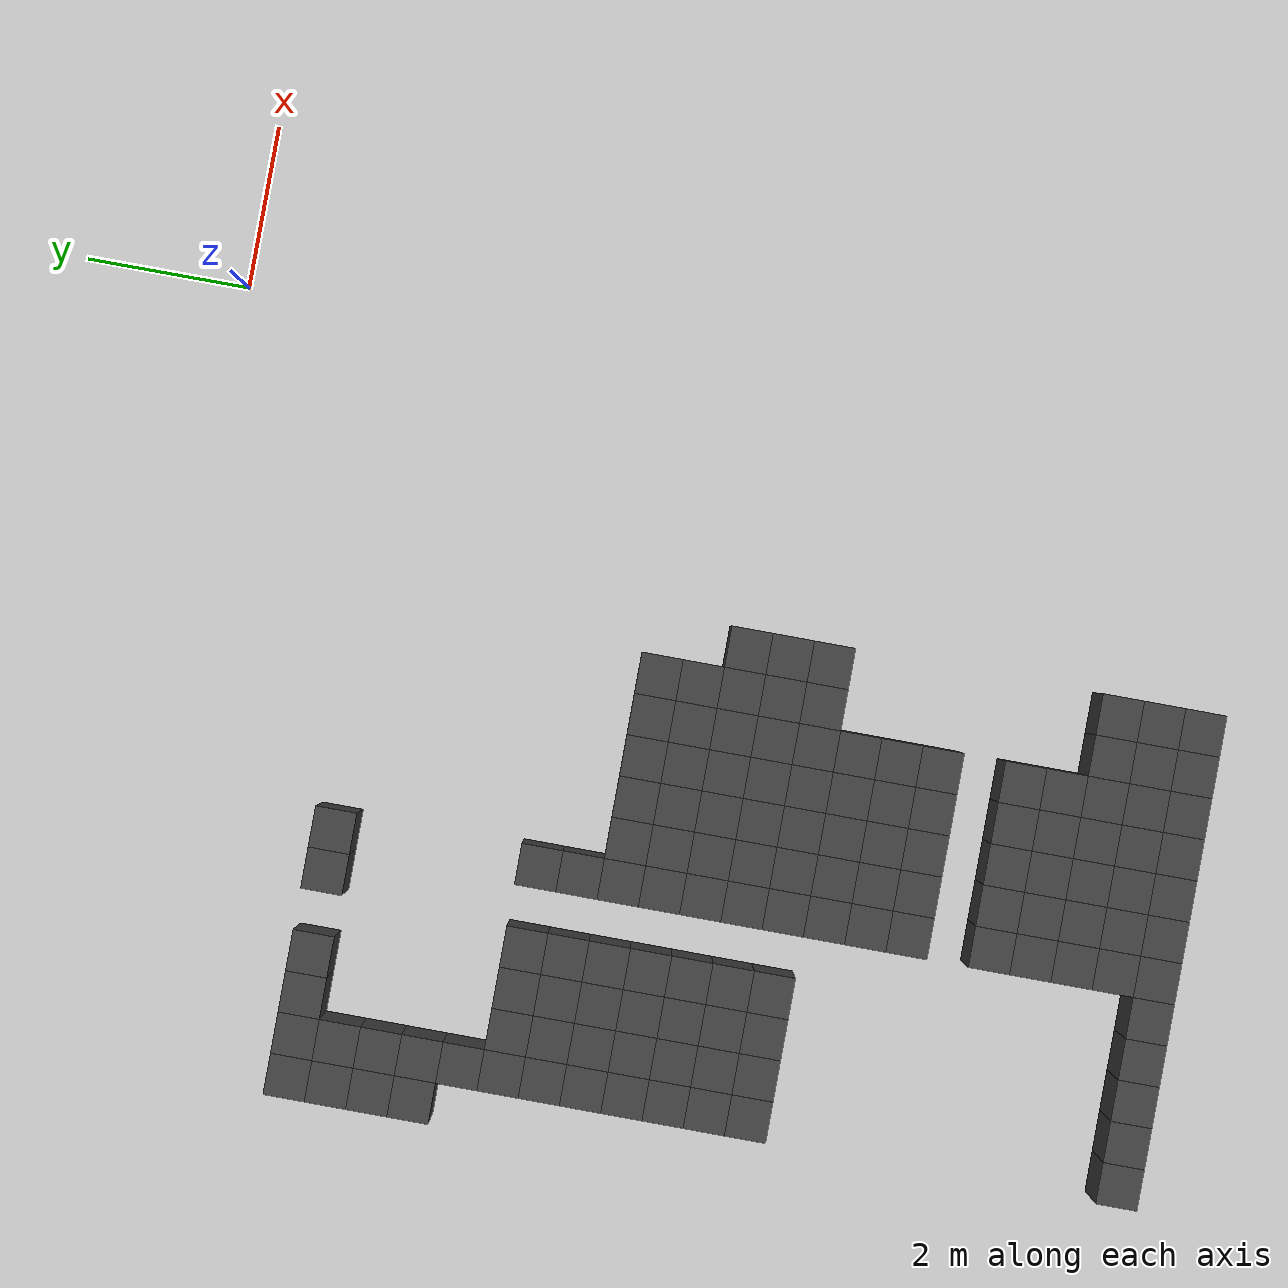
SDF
<sdf version="1.7">
 <world name="map_14494">
  <model name="ground_plane">
   <static>true</static>
   <link name="link">
    <collision name="collision">
     <geometry><plane><normal>0 0 1</normal><size>200 200</size></plane></geometry>
    </collision>
    <visual name="visual">
     <geometry><plane><normal>0 0 1</normal><size>200 200</size></plane></geometry>
     <material><ambient>0.8 0.8 0.8 1</ambient><diffuse>0.8 0.8 0.8 1</diffuse></material>
    </visual>
   </link>
  </model>
  <model name="maze_environment">
   <static>true</static>
   <link name="wall_1055">
    <pose>-9.250 -2.250 0.500 0 0 0</pose>
    <collision name="col"><geometry><box><size>0.5 0.5 1.0</size></box></geometry></collision>
    <visual name="vis">
     <geometry><box><size>0.5 0.5 1.0</size></box></geometry>
     <material><ambient>0.15 0.15 0.15 1</ambient><diffuse>0.25 0.25 0.25 1</diffuse></material>
    </visual>
   </link>
   <link name="wall_1056">
    <pose>-8.750 -2.250 0.500 0 0 0</pose>
    <collision name="col"><geometry><box><size>0.5 0.5 1.0</size></box></geometry></collision>
    <visual name="vis">
     <geometry><box><size>0.5 0.5 1.0</size></box></geometry>
     <material><ambient>0.15 0.15 0.15 1</ambient><diffuse>0.25 0.25 0.25 1</diffuse></material>
    </visual>
   </link>
   <link name="wall_1057">
    <pose>-8.250 -2.250 0.500 0 0 0</pose>
    <collision name="col"><geometry><box><size>0.5 0.5 1.0</size></box></geometry></collision>
    <visual name="vis">
     <geometry><box><size>0.5 0.5 1.0</size></box></geometry>
     <material><ambient>0.15 0.15 0.15 1</ambient><diffuse>0.25 0.25 0.25 1</diffuse></material>
    </visual>
   </link>
   <link name="wall_1058">
    <pose>-7.750 -2.250 0.500 0 0 0</pose>
    <collision name="col"><geometry><box><size>0.5 0.5 1.0</size></box></geometry></collision>
    <visual name="vis">
     <geometry><box><size>0.5 0.5 1.0</size></box></geometry>
     <material><ambient>0.15 0.15 0.15 1</ambient><diffuse>0.25 0.25 0.25 1</diffuse></material>
    </visual>
   </link>
   <link name="wall_1059">
    <pose>-6.750 -2.250 0.500 0 0 0</pose>
    <collision name="col"><geometry><box><size>0.5 0.5 1.0</size></box></geometry></collision>
    <visual name="vis">
     <geometry><box><size>0.5 0.5 1.0</size></box></geometry>
     <material><ambient>0.15 0.15 0.15 1</ambient><diffuse>0.25 0.25 0.25 1</diffuse></material>
    </visual>
   </link>
   <link name="wall_1060">
    <pose>-6.250 -2.250 0.500 0 0 0</pose>
    <collision name="col"><geometry><box><size>0.5 0.5 1.0</size></box></geometry></collision>
    <visual name="vis">
     <geometry><box><size>0.5 0.5 1.0</size></box></geometry>
     <material><ambient>0.15 0.15 0.15 1</ambient><diffuse>0.25 0.25 0.25 1</diffuse></material>
    </visual>
   </link>
   <link name="wall_1087">
    <pose>-9.250 -2.750 0.500 0 0 0</pose>
    <collision name="col"><geometry><box><size>0.5 0.5 1.0</size></box></geometry></collision>
    <visual name="vis">
     <geometry><box><size>0.5 0.5 1.0</size></box></geometry>
     <material><ambient>0.15 0.15 0.15 1</ambient><diffuse>0.25 0.25 0.25 1</diffuse></material>
    </visual>
   </link>
   <link name="wall_1088">
    <pose>-8.750 -2.750 0.500 0 0 0</pose>
    <collision name="col"><geometry><box><size>0.5 0.5 1.0</size></box></geometry></collision>
    <visual name="vis">
     <geometry><box><size>0.5 0.5 1.0</size></box></geometry>
     <material><ambient>0.15 0.15 0.15 1</ambient><diffuse>0.25 0.25 0.25 1</diffuse></material>
    </visual>
   </link>
   <link name="wall_1113">
    <pose>-9.250 -3.250 0.500 0 0 0</pose>
    <collision name="col"><geometry><box><size>0.5 0.5 1.0</size></box></geometry></collision>
    <visual name="vis">
     <geometry><box><size>0.5 0.5 1.0</size></box></geometry>
     <material><ambient>0.15 0.15 0.15 1</ambient><diffuse>0.25 0.25 0.25 1</diffuse></material>
    </visual>
   </link>
   <link name="wall_1114">
    <pose>-8.750 -3.250 0.500 0 0 0</pose>
    <collision name="col"><geometry><box><size>0.5 0.5 1.0</size></box></geometry></collision>
    <visual name="vis">
     <geometry><box><size>0.5 0.5 1.0</size></box></geometry>
     <material><ambient>0.15 0.15 0.15 1</ambient><diffuse>0.25 0.25 0.25 1</diffuse></material>
    </visual>
   </link>
   <link name="wall_1140">
    <pose>-9.250 -3.750 0.500 0 0 0</pose>
    <collision name="col"><geometry><box><size>0.5 0.5 1.0</size></box></geometry></collision>
    <visual name="vis">
     <geometry><box><size>0.5 0.5 1.0</size></box></geometry>
     <material><ambient>0.15 0.15 0.15 1</ambient><diffuse>0.25 0.25 0.25 1</diffuse></material>
    </visual>
   </link>
   <link name="wall_1141">
    <pose>-8.750 -3.750 0.500 0 0 0</pose>
    <collision name="col"><geometry><box><size>0.5 0.5 1.0</size></box></geometry></collision>
    <visual name="vis">
     <geometry><box><size>0.5 0.5 1.0</size></box></geometry>
     <material><ambient>0.15 0.15 0.15 1</ambient><diffuse>0.25 0.25 0.25 1</diffuse></material>
    </visual>
   </link>
   <link name="wall_1168">
    <pose>-8.750 -4.250 0.500 0 0 0</pose>
    <collision name="col"><geometry><box><size>0.5 0.5 1.0</size></box></geometry></collision>
    <visual name="vis">
     <geometry><box><size>0.5 0.5 1.0</size></box></geometry>
     <material><ambient>0.15 0.15 0.15 1</ambient><diffuse>0.25 0.25 0.25 1</diffuse></material>
    </visual>
   </link>
   <link name="wall_1195">
    <pose>-8.750 -4.750 0.500 0 0 0</pose>
    <collision name="col"><geometry><box><size>0.5 0.5 1.0</size></box></geometry></collision>
    <visual name="vis">
     <geometry><box><size>0.5 0.5 1.0</size></box></geometry>
     <material><ambient>0.15 0.15 0.15 1</ambient><diffuse>0.25 0.25 0.25 1</diffuse></material>
    </visual>
   </link>
   <link name="wall_1196">
    <pose>-8.250 -4.750 0.500 0 0 0</pose>
    <collision name="col"><geometry><box><size>0.5 0.5 1.0</size></box></geometry></collision>
    <visual name="vis">
     <geometry><box><size>0.5 0.5 1.0</size></box></geometry>
     <material><ambient>0.15 0.15 0.15 1</ambient><diffuse>0.25 0.25 0.25 1</diffuse></material>
    </visual>
   </link>
   <link name="wall_1197">
    <pose>-7.750 -4.750 0.500 0 0 0</pose>
    <collision name="col"><geometry><box><size>0.5 0.5 1.0</size></box></geometry></collision>
    <visual name="vis">
     <geometry><box><size>0.5 0.5 1.0</size></box></geometry>
     <material><ambient>0.15 0.15 0.15 1</ambient><diffuse>0.25 0.25 0.25 1</diffuse></material>
    </visual>
   </link>
   <link name="wall_1198">
    <pose>-7.250 -4.750 0.500 0 0 0</pose>
    <collision name="col"><geometry><box><size>0.5 0.5 1.0</size></box></geometry></collision>
    <visual name="vis">
     <geometry><box><size>0.5 0.5 1.0</size></box></geometry>
     <material><ambient>0.15 0.15 0.15 1</ambient><diffuse>0.25 0.25 0.25 1</diffuse></material>
    </visual>
   </link>
   <link name="wall_1199">
    <pose>-6.250 -4.750 0.500 0 0 0</pose>
    <collision name="col"><geometry><box><size>0.5 0.5 1.0</size></box></geometry></collision>
    <visual name="vis">
     <geometry><box><size>0.5 0.5 1.0</size></box></geometry>
     <material><ambient>0.15 0.15 0.15 1</ambient><diffuse>0.25 0.25 0.25 1</diffuse></material>
    </visual>
   </link>
   <link name="wall_1232">
    <pose>-8.750 -5.250 0.500 0 0 0</pose>
    <collision name="col"><geometry><box><size>0.5 0.5 1.0</size></box></geometry></collision>
    <visual name="vis">
     <geometry><box><size>0.5 0.5 1.0</size></box></geometry>
     <material><ambient>0.15 0.15 0.15 1</ambient><diffuse>0.25 0.25 0.25 1</diffuse></material>
    </visual>
   </link>
   <link name="wall_1233">
    <pose>-8.250 -5.250 0.500 0 0 0</pose>
    <collision name="col"><geometry><box><size>0.5 0.5 1.0</size></box></geometry></collision>
    <visual name="vis">
     <geometry><box><size>0.5 0.5 1.0</size></box></geometry>
     <material><ambient>0.15 0.15 0.15 1</ambient><diffuse>0.25 0.25 0.25 1</diffuse></material>
    </visual>
   </link>
   <link name="wall_1234">
    <pose>-7.750 -5.250 0.500 0 0 0</pose>
    <collision name="col"><geometry><box><size>0.5 0.5 1.0</size></box></geometry></collision>
    <visual name="vis">
     <geometry><box><size>0.5 0.5 1.0</size></box></geometry>
     <material><ambient>0.15 0.15 0.15 1</ambient><diffuse>0.25 0.25 0.25 1</diffuse></material>
    </visual>
   </link>
   <link name="wall_1235">
    <pose>-7.250 -5.250 0.500 0 0 0</pose>
    <collision name="col"><geometry><box><size>0.5 0.5 1.0</size></box></geometry></collision>
    <visual name="vis">
     <geometry><box><size>0.5 0.5 1.0</size></box></geometry>
     <material><ambient>0.15 0.15 0.15 1</ambient><diffuse>0.25 0.25 0.25 1</diffuse></material>
    </visual>
   </link>
   <link name="wall_1236">
    <pose>-6.250 -5.250 0.500 0 0 0</pose>
    <collision name="col"><geometry><box><size>0.5 0.5 1.0</size></box></geometry></collision>
    <visual name="vis">
     <geometry><box><size>0.5 0.5 1.0</size></box></geometry>
     <material><ambient>0.15 0.15 0.15 1</ambient><diffuse>0.25 0.25 0.25 1</diffuse></material>
    </visual>
   </link>
   <link name="wall_1269">
    <pose>-8.750 -5.750 0.500 0 0 0</pose>
    <collision name="col"><geometry><box><size>0.5 0.5 1.0</size></box></geometry></collision>
    <visual name="vis">
     <geometry><box><size>0.5 0.5 1.0</size></box></geometry>
     <material><ambient>0.15 0.15 0.15 1</ambient><diffuse>0.25 0.25 0.25 1</diffuse></material>
    </visual>
   </link>
   <link name="wall_1270">
    <pose>-8.250 -5.750 0.500 0 0 0</pose>
    <collision name="col"><geometry><box><size>0.5 0.5 1.0</size></box></geometry></collision>
    <visual name="vis">
     <geometry><box><size>0.5 0.5 1.0</size></box></geometry>
     <material><ambient>0.15 0.15 0.15 1</ambient><diffuse>0.25 0.25 0.25 1</diffuse></material>
    </visual>
   </link>
   <link name="wall_1271">
    <pose>-7.750 -5.750 0.500 0 0 0</pose>
    <collision name="col"><geometry><box><size>0.5 0.5 1.0</size></box></geometry></collision>
    <visual name="vis">
     <geometry><box><size>0.5 0.5 1.0</size></box></geometry>
     <material><ambient>0.15 0.15 0.15 1</ambient><diffuse>0.25 0.25 0.25 1</diffuse></material>
    </visual>
   </link>
   <link name="wall_1272">
    <pose>-7.250 -5.750 0.500 0 0 0</pose>
    <collision name="col"><geometry><box><size>0.5 0.5 1.0</size></box></geometry></collision>
    <visual name="vis">
     <geometry><box><size>0.5 0.5 1.0</size></box></geometry>
     <material><ambient>0.15 0.15 0.15 1</ambient><diffuse>0.25 0.25 0.25 1</diffuse></material>
    </visual>
   </link>
   <link name="wall_1273">
    <pose>-6.250 -5.750 0.500 0 0 0</pose>
    <collision name="col"><geometry><box><size>0.5 0.5 1.0</size></box></geometry></collision>
    <visual name="vis">
     <geometry><box><size>0.5 0.5 1.0</size></box></geometry>
     <material><ambient>0.15 0.15 0.15 1</ambient><diffuse>0.25 0.25 0.25 1</diffuse></material>
    </visual>
   </link>
   <link name="wall_1274">
    <pose>-5.750 -5.750 0.500 0 0 0</pose>
    <collision name="col"><geometry><box><size>0.5 0.5 1.0</size></box></geometry></collision>
    <visual name="vis">
     <geometry><box><size>0.5 0.5 1.0</size></box></geometry>
     <material><ambient>0.15 0.15 0.15 1</ambient><diffuse>0.25 0.25 0.25 1</diffuse></material>
    </visual>
   </link>
   <link name="wall_1275">
    <pose>-5.250 -5.750 0.500 0 0 0</pose>
    <collision name="col"><geometry><box><size>0.5 0.5 1.0</size></box></geometry></collision>
    <visual name="vis">
     <geometry><box><size>0.5 0.5 1.0</size></box></geometry>
     <material><ambient>0.15 0.15 0.15 1</ambient><diffuse>0.25 0.25 0.25 1</diffuse></material>
    </visual>
   </link>
   <link name="wall_1276">
    <pose>-4.750 -5.750 0.500 0 0 0</pose>
    <collision name="col"><geometry><box><size>0.5 0.5 1.0</size></box></geometry></collision>
    <visual name="vis">
     <geometry><box><size>0.5 0.5 1.0</size></box></geometry>
     <material><ambient>0.15 0.15 0.15 1</ambient><diffuse>0.25 0.25 0.25 1</diffuse></material>
    </visual>
   </link>
   <link name="wall_1277">
    <pose>-4.250 -5.750 0.500 0 0 0</pose>
    <collision name="col"><geometry><box><size>0.5 0.5 1.0</size></box></geometry></collision>
    <visual name="vis">
     <geometry><box><size>0.5 0.5 1.0</size></box></geometry>
     <material><ambient>0.15 0.15 0.15 1</ambient><diffuse>0.25 0.25 0.25 1</diffuse></material>
    </visual>
   </link>
   <link name="wall_1278">
    <pose>-3.750 -5.750 0.500 0 0 0</pose>
    <collision name="col"><geometry><box><size>0.5 0.5 1.0</size></box></geometry></collision>
    <visual name="vis">
     <geometry><box><size>0.5 0.5 1.0</size></box></geometry>
     <material><ambient>0.15 0.15 0.15 1</ambient><diffuse>0.25 0.25 0.25 1</diffuse></material>
    </visual>
   </link>
   <link name="wall_1316">
    <pose>-8.750 -6.250 0.500 0 0 0</pose>
    <collision name="col"><geometry><box><size>0.5 0.5 1.0</size></box></geometry></collision>
    <visual name="vis">
     <geometry><box><size>0.5 0.5 1.0</size></box></geometry>
     <material><ambient>0.15 0.15 0.15 1</ambient><diffuse>0.25 0.25 0.25 1</diffuse></material>
    </visual>
   </link>
   <link name="wall_1317">
    <pose>-8.250 -6.250 0.500 0 0 0</pose>
    <collision name="col"><geometry><box><size>0.5 0.5 1.0</size></box></geometry></collision>
    <visual name="vis">
     <geometry><box><size>0.5 0.5 1.0</size></box></geometry>
     <material><ambient>0.15 0.15 0.15 1</ambient><diffuse>0.25 0.25 0.25 1</diffuse></material>
    </visual>
   </link>
   <link name="wall_1318">
    <pose>-7.750 -6.250 0.500 0 0 0</pose>
    <collision name="col"><geometry><box><size>0.5 0.5 1.0</size></box></geometry></collision>
    <visual name="vis">
     <geometry><box><size>0.5 0.5 1.0</size></box></geometry>
     <material><ambient>0.15 0.15 0.15 1</ambient><diffuse>0.25 0.25 0.25 1</diffuse></material>
    </visual>
   </link>
   <link name="wall_1319">
    <pose>-7.250 -6.250 0.500 0 0 0</pose>
    <collision name="col"><geometry><box><size>0.5 0.5 1.0</size></box></geometry></collision>
    <visual name="vis">
     <geometry><box><size>0.5 0.5 1.0</size></box></geometry>
     <material><ambient>0.15 0.15 0.15 1</ambient><diffuse>0.25 0.25 0.25 1</diffuse></material>
    </visual>
   </link>
   <link name="wall_1320">
    <pose>-6.250 -6.250 0.500 0 0 0</pose>
    <collision name="col"><geometry><box><size>0.5 0.5 1.0</size></box></geometry></collision>
    <visual name="vis">
     <geometry><box><size>0.5 0.5 1.0</size></box></geometry>
     <material><ambient>0.15 0.15 0.15 1</ambient><diffuse>0.25 0.25 0.25 1</diffuse></material>
    </visual>
   </link>
   <link name="wall_1321">
    <pose>-5.750 -6.250 0.500 0 0 0</pose>
    <collision name="col"><geometry><box><size>0.5 0.5 1.0</size></box></geometry></collision>
    <visual name="vis">
     <geometry><box><size>0.5 0.5 1.0</size></box></geometry>
     <material><ambient>0.15 0.15 0.15 1</ambient><diffuse>0.25 0.25 0.25 1</diffuse></material>
    </visual>
   </link>
   <link name="wall_1322">
    <pose>-5.250 -6.250 0.500 0 0 0</pose>
    <collision name="col"><geometry><box><size>0.5 0.5 1.0</size></box></geometry></collision>
    <visual name="vis">
     <geometry><box><size>0.5 0.5 1.0</size></box></geometry>
     <material><ambient>0.15 0.15 0.15 1</ambient><diffuse>0.25 0.25 0.25 1</diffuse></material>
    </visual>
   </link>
   <link name="wall_1323">
    <pose>-4.750 -6.250 0.500 0 0 0</pose>
    <collision name="col"><geometry><box><size>0.5 0.5 1.0</size></box></geometry></collision>
    <visual name="vis">
     <geometry><box><size>0.5 0.5 1.0</size></box></geometry>
     <material><ambient>0.15 0.15 0.15 1</ambient><diffuse>0.25 0.25 0.25 1</diffuse></material>
    </visual>
   </link>
   <link name="wall_1324">
    <pose>-4.250 -6.250 0.500 0 0 0</pose>
    <collision name="col"><geometry><box><size>0.5 0.5 1.0</size></box></geometry></collision>
    <visual name="vis">
     <geometry><box><size>0.5 0.5 1.0</size></box></geometry>
     <material><ambient>0.15 0.15 0.15 1</ambient><diffuse>0.25 0.25 0.25 1</diffuse></material>
    </visual>
   </link>
   <link name="wall_1325">
    <pose>-3.750 -6.250 0.500 0 0 0</pose>
    <collision name="col"><geometry><box><size>0.5 0.5 1.0</size></box></geometry></collision>
    <visual name="vis">
     <geometry><box><size>0.5 0.5 1.0</size></box></geometry>
     <material><ambient>0.15 0.15 0.15 1</ambient><diffuse>0.25 0.25 0.25 1</diffuse></material>
    </visual>
   </link>
   <link name="wall_1363">
    <pose>-8.750 -6.750 0.500 0 0 0</pose>
    <collision name="col"><geometry><box><size>0.5 0.5 1.0</size></box></geometry></collision>
    <visual name="vis">
     <geometry><box><size>0.5 0.5 1.0</size></box></geometry>
     <material><ambient>0.15 0.15 0.15 1</ambient><diffuse>0.25 0.25 0.25 1</diffuse></material>
    </visual>
   </link>
   <link name="wall_1364">
    <pose>-8.250 -6.750 0.500 0 0 0</pose>
    <collision name="col"><geometry><box><size>0.5 0.5 1.0</size></box></geometry></collision>
    <visual name="vis">
     <geometry><box><size>0.5 0.5 1.0</size></box></geometry>
     <material><ambient>0.15 0.15 0.15 1</ambient><diffuse>0.25 0.25 0.25 1</diffuse></material>
    </visual>
   </link>
   <link name="wall_1365">
    <pose>-7.750 -6.750 0.500 0 0 0</pose>
    <collision name="col"><geometry><box><size>0.5 0.5 1.0</size></box></geometry></collision>
    <visual name="vis">
     <geometry><box><size>0.5 0.5 1.0</size></box></geometry>
     <material><ambient>0.15 0.15 0.15 1</ambient><diffuse>0.25 0.25 0.25 1</diffuse></material>
    </visual>
   </link>
   <link name="wall_1366">
    <pose>-7.250 -6.750 0.500 0 0 0</pose>
    <collision name="col"><geometry><box><size>0.5 0.5 1.0</size></box></geometry></collision>
    <visual name="vis">
     <geometry><box><size>0.5 0.5 1.0</size></box></geometry>
     <material><ambient>0.15 0.15 0.15 1</ambient><diffuse>0.25 0.25 0.25 1</diffuse></material>
    </visual>
   </link>
   <link name="wall_1367">
    <pose>-6.250 -6.750 0.500 0 0 0</pose>
    <collision name="col"><geometry><box><size>0.5 0.5 1.0</size></box></geometry></collision>
    <visual name="vis">
     <geometry><box><size>0.5 0.5 1.0</size></box></geometry>
     <material><ambient>0.15 0.15 0.15 1</ambient><diffuse>0.25 0.25 0.25 1</diffuse></material>
    </visual>
   </link>
   <link name="wall_1368">
    <pose>-5.750 -6.750 0.500 0 0 0</pose>
    <collision name="col"><geometry><box><size>0.5 0.5 1.0</size></box></geometry></collision>
    <visual name="vis">
     <geometry><box><size>0.5 0.5 1.0</size></box></geometry>
     <material><ambient>0.15 0.15 0.15 1</ambient><diffuse>0.25 0.25 0.25 1</diffuse></material>
    </visual>
   </link>
   <link name="wall_1369">
    <pose>-5.250 -6.750 0.500 0 0 0</pose>
    <collision name="col"><geometry><box><size>0.5 0.5 1.0</size></box></geometry></collision>
    <visual name="vis">
     <geometry><box><size>0.5 0.5 1.0</size></box></geometry>
     <material><ambient>0.15 0.15 0.15 1</ambient><diffuse>0.25 0.25 0.25 1</diffuse></material>
    </visual>
   </link>
   <link name="wall_1370">
    <pose>-4.750 -6.750 0.500 0 0 0</pose>
    <collision name="col"><geometry><box><size>0.5 0.5 1.0</size></box></geometry></collision>
    <visual name="vis">
     <geometry><box><size>0.5 0.5 1.0</size></box></geometry>
     <material><ambient>0.15 0.15 0.15 1</ambient><diffuse>0.25 0.25 0.25 1</diffuse></material>
    </visual>
   </link>
   <link name="wall_1371">
    <pose>-4.250 -6.750 0.500 0 0 0</pose>
    <collision name="col"><geometry><box><size>0.5 0.5 1.0</size></box></geometry></collision>
    <visual name="vis">
     <geometry><box><size>0.5 0.5 1.0</size></box></geometry>
     <material><ambient>0.15 0.15 0.15 1</ambient><diffuse>0.25 0.25 0.25 1</diffuse></material>
    </visual>
   </link>
   <link name="wall_1372">
    <pose>-3.750 -6.750 0.500 0 0 0</pose>
    <collision name="col"><geometry><box><size>0.5 0.5 1.0</size></box></geometry></collision>
    <visual name="vis">
     <geometry><box><size>0.5 0.5 1.0</size></box></geometry>
     <material><ambient>0.15 0.15 0.15 1</ambient><diffuse>0.25 0.25 0.25 1</diffuse></material>
    </visual>
   </link>
   <link name="wall_1373">
    <pose>-3.250 -6.750 0.500 0 0 0</pose>
    <collision name="col"><geometry><box><size>0.5 0.5 1.0</size></box></geometry></collision>
    <visual name="vis">
     <geometry><box><size>0.5 0.5 1.0</size></box></geometry>
     <material><ambient>0.15 0.15 0.15 1</ambient><diffuse>0.25 0.25 0.25 1</diffuse></material>
    </visual>
   </link>
   <link name="wall_1410">
    <pose>-8.750 -7.250 0.500 0 0 0</pose>
    <collision name="col"><geometry><box><size>0.5 0.5 1.0</size></box></geometry></collision>
    <visual name="vis">
     <geometry><box><size>0.5 0.5 1.0</size></box></geometry>
     <material><ambient>0.15 0.15 0.15 1</ambient><diffuse>0.25 0.25 0.25 1</diffuse></material>
    </visual>
   </link>
   <link name="wall_1411">
    <pose>-8.250 -7.250 0.500 0 0 0</pose>
    <collision name="col"><geometry><box><size>0.5 0.5 1.0</size></box></geometry></collision>
    <visual name="vis">
     <geometry><box><size>0.5 0.5 1.0</size></box></geometry>
     <material><ambient>0.15 0.15 0.15 1</ambient><diffuse>0.25 0.25 0.25 1</diffuse></material>
    </visual>
   </link>
   <link name="wall_1412">
    <pose>-7.750 -7.250 0.500 0 0 0</pose>
    <collision name="col"><geometry><box><size>0.5 0.5 1.0</size></box></geometry></collision>
    <visual name="vis">
     <geometry><box><size>0.5 0.5 1.0</size></box></geometry>
     <material><ambient>0.15 0.15 0.15 1</ambient><diffuse>0.25 0.25 0.25 1</diffuse></material>
    </visual>
   </link>
   <link name="wall_1413">
    <pose>-7.250 -7.250 0.500 0 0 0</pose>
    <collision name="col"><geometry><box><size>0.5 0.5 1.0</size></box></geometry></collision>
    <visual name="vis">
     <geometry><box><size>0.5 0.5 1.0</size></box></geometry>
     <material><ambient>0.15 0.15 0.15 1</ambient><diffuse>0.25 0.25 0.25 1</diffuse></material>
    </visual>
   </link>
   <link name="wall_1414">
    <pose>-6.250 -7.250 0.500 0 0 0</pose>
    <collision name="col"><geometry><box><size>0.5 0.5 1.0</size></box></geometry></collision>
    <visual name="vis">
     <geometry><box><size>0.5 0.5 1.0</size></box></geometry>
     <material><ambient>0.15 0.15 0.15 1</ambient><diffuse>0.25 0.25 0.25 1</diffuse></material>
    </visual>
   </link>
   <link name="wall_1415">
    <pose>-5.750 -7.250 0.500 0 0 0</pose>
    <collision name="col"><geometry><box><size>0.5 0.5 1.0</size></box></geometry></collision>
    <visual name="vis">
     <geometry><box><size>0.5 0.5 1.0</size></box></geometry>
     <material><ambient>0.15 0.15 0.15 1</ambient><diffuse>0.25 0.25 0.25 1</diffuse></material>
    </visual>
   </link>
   <link name="wall_1416">
    <pose>-5.250 -7.250 0.500 0 0 0</pose>
    <collision name="col"><geometry><box><size>0.5 0.5 1.0</size></box></geometry></collision>
    <visual name="vis">
     <geometry><box><size>0.5 0.5 1.0</size></box></geometry>
     <material><ambient>0.15 0.15 0.15 1</ambient><diffuse>0.25 0.25 0.25 1</diffuse></material>
    </visual>
   </link>
   <link name="wall_1417">
    <pose>-4.750 -7.250 0.500 0 0 0</pose>
    <collision name="col"><geometry><box><size>0.5 0.5 1.0</size></box></geometry></collision>
    <visual name="vis">
     <geometry><box><size>0.5 0.5 1.0</size></box></geometry>
     <material><ambient>0.15 0.15 0.15 1</ambient><diffuse>0.25 0.25 0.25 1</diffuse></material>
    </visual>
   </link>
   <link name="wall_1418">
    <pose>-4.250 -7.250 0.500 0 0 0</pose>
    <collision name="col"><geometry><box><size>0.5 0.5 1.0</size></box></geometry></collision>
    <visual name="vis">
     <geometry><box><size>0.5 0.5 1.0</size></box></geometry>
     <material><ambient>0.15 0.15 0.15 1</ambient><diffuse>0.25 0.25 0.25 1</diffuse></material>
    </visual>
   </link>
   <link name="wall_1419">
    <pose>-3.750 -7.250 0.500 0 0 0</pose>
    <collision name="col"><geometry><box><size>0.5 0.5 1.0</size></box></geometry></collision>
    <visual name="vis">
     <geometry><box><size>0.5 0.5 1.0</size></box></geometry>
     <material><ambient>0.15 0.15 0.15 1</ambient><diffuse>0.25 0.25 0.25 1</diffuse></material>
    </visual>
   </link>
   <link name="wall_1420">
    <pose>-3.250 -7.250 0.500 0 0 0</pose>
    <collision name="col"><geometry><box><size>0.5 0.5 1.0</size></box></geometry></collision>
    <visual name="vis">
     <geometry><box><size>0.5 0.5 1.0</size></box></geometry>
     <material><ambient>0.15 0.15 0.15 1</ambient><diffuse>0.25 0.25 0.25 1</diffuse></material>
    </visual>
   </link>
   <link name="wall_1451">
    <pose>-8.750 -7.750 0.500 0 0 0</pose>
    <collision name="col"><geometry><box><size>0.5 0.5 1.0</size></box></geometry></collision>
    <visual name="vis">
     <geometry><box><size>0.5 0.5 1.0</size></box></geometry>
     <material><ambient>0.15 0.15 0.15 1</ambient><diffuse>0.25 0.25 0.25 1</diffuse></material>
    </visual>
   </link>
   <link name="wall_1452">
    <pose>-8.250 -7.750 0.500 0 0 0</pose>
    <collision name="col"><geometry><box><size>0.5 0.5 1.0</size></box></geometry></collision>
    <visual name="vis">
     <geometry><box><size>0.5 0.5 1.0</size></box></geometry>
     <material><ambient>0.15 0.15 0.15 1</ambient><diffuse>0.25 0.25 0.25 1</diffuse></material>
    </visual>
   </link>
   <link name="wall_1453">
    <pose>-7.750 -7.750 0.500 0 0 0</pose>
    <collision name="col"><geometry><box><size>0.5 0.5 1.0</size></box></geometry></collision>
    <visual name="vis">
     <geometry><box><size>0.5 0.5 1.0</size></box></geometry>
     <material><ambient>0.15 0.15 0.15 1</ambient><diffuse>0.25 0.25 0.25 1</diffuse></material>
    </visual>
   </link>
   <link name="wall_1454">
    <pose>-7.250 -7.750 0.500 0 0 0</pose>
    <collision name="col"><geometry><box><size>0.5 0.5 1.0</size></box></geometry></collision>
    <visual name="vis">
     <geometry><box><size>0.5 0.5 1.0</size></box></geometry>
     <material><ambient>0.15 0.15 0.15 1</ambient><diffuse>0.25 0.25 0.25 1</diffuse></material>
    </visual>
   </link>
   <link name="wall_1455">
    <pose>-6.250 -7.750 0.500 0 0 0</pose>
    <collision name="col"><geometry><box><size>0.5 0.5 1.0</size></box></geometry></collision>
    <visual name="vis">
     <geometry><box><size>0.5 0.5 1.0</size></box></geometry>
     <material><ambient>0.15 0.15 0.15 1</ambient><diffuse>0.25 0.25 0.25 1</diffuse></material>
    </visual>
   </link>
   <link name="wall_1456">
    <pose>-5.750 -7.750 0.500 0 0 0</pose>
    <collision name="col"><geometry><box><size>0.5 0.5 1.0</size></box></geometry></collision>
    <visual name="vis">
     <geometry><box><size>0.5 0.5 1.0</size></box></geometry>
     <material><ambient>0.15 0.15 0.15 1</ambient><diffuse>0.25 0.25 0.25 1</diffuse></material>
    </visual>
   </link>
   <link name="wall_1457">
    <pose>-5.250 -7.750 0.500 0 0 0</pose>
    <collision name="col"><geometry><box><size>0.5 0.5 1.0</size></box></geometry></collision>
    <visual name="vis">
     <geometry><box><size>0.5 0.5 1.0</size></box></geometry>
     <material><ambient>0.15 0.15 0.15 1</ambient><diffuse>0.25 0.25 0.25 1</diffuse></material>
    </visual>
   </link>
   <link name="wall_1458">
    <pose>-4.750 -7.750 0.500 0 0 0</pose>
    <collision name="col"><geometry><box><size>0.5 0.5 1.0</size></box></geometry></collision>
    <visual name="vis">
     <geometry><box><size>0.5 0.5 1.0</size></box></geometry>
     <material><ambient>0.15 0.15 0.15 1</ambient><diffuse>0.25 0.25 0.25 1</diffuse></material>
    </visual>
   </link>
   <link name="wall_1459">
    <pose>-4.250 -7.750 0.500 0 0 0</pose>
    <collision name="col"><geometry><box><size>0.5 0.5 1.0</size></box></geometry></collision>
    <visual name="vis">
     <geometry><box><size>0.5 0.5 1.0</size></box></geometry>
     <material><ambient>0.15 0.15 0.15 1</ambient><diffuse>0.25 0.25 0.25 1</diffuse></material>
    </visual>
   </link>
   <link name="wall_1460">
    <pose>-3.750 -7.750 0.500 0 0 0</pose>
    <collision name="col"><geometry><box><size>0.5 0.5 1.0</size></box></geometry></collision>
    <visual name="vis">
     <geometry><box><size>0.5 0.5 1.0</size></box></geometry>
     <material><ambient>0.15 0.15 0.15 1</ambient><diffuse>0.25 0.25 0.25 1</diffuse></material>
    </visual>
   </link>
   <link name="wall_1461">
    <pose>-3.250 -7.750 0.500 0 0 0</pose>
    <collision name="col"><geometry><box><size>0.5 0.5 1.0</size></box></geometry></collision>
    <visual name="vis">
     <geometry><box><size>0.5 0.5 1.0</size></box></geometry>
     <material><ambient>0.15 0.15 0.15 1</ambient><diffuse>0.25 0.25 0.25 1</diffuse></material>
    </visual>
   </link>
   <link name="wall_1490">
    <pose>-6.250 -8.250 0.500 0 0 0</pose>
    <collision name="col"><geometry><box><size>0.5 0.5 1.0</size></box></geometry></collision>
    <visual name="vis">
     <geometry><box><size>0.5 0.5 1.0</size></box></geometry>
     <material><ambient>0.15 0.15 0.15 1</ambient><diffuse>0.25 0.25 0.25 1</diffuse></material>
    </visual>
   </link>
   <link name="wall_1491">
    <pose>-5.750 -8.250 0.500 0 0 0</pose>
    <collision name="col"><geometry><box><size>0.5 0.5 1.0</size></box></geometry></collision>
    <visual name="vis">
     <geometry><box><size>0.5 0.5 1.0</size></box></geometry>
     <material><ambient>0.15 0.15 0.15 1</ambient><diffuse>0.25 0.25 0.25 1</diffuse></material>
    </visual>
   </link>
   <link name="wall_1492">
    <pose>-5.250 -8.250 0.500 0 0 0</pose>
    <collision name="col"><geometry><box><size>0.5 0.5 1.0</size></box></geometry></collision>
    <visual name="vis">
     <geometry><box><size>0.5 0.5 1.0</size></box></geometry>
     <material><ambient>0.15 0.15 0.15 1</ambient><diffuse>0.25 0.25 0.25 1</diffuse></material>
    </visual>
   </link>
   <link name="wall_1493">
    <pose>-4.750 -8.250 0.500 0 0 0</pose>
    <collision name="col"><geometry><box><size>0.5 0.5 1.0</size></box></geometry></collision>
    <visual name="vis">
     <geometry><box><size>0.5 0.5 1.0</size></box></geometry>
     <material><ambient>0.15 0.15 0.15 1</ambient><diffuse>0.25 0.25 0.25 1</diffuse></material>
    </visual>
   </link>
   <link name="wall_1494">
    <pose>-4.250 -8.250 0.500 0 0 0</pose>
    <collision name="col"><geometry><box><size>0.5 0.5 1.0</size></box></geometry></collision>
    <visual name="vis">
     <geometry><box><size>0.5 0.5 1.0</size></box></geometry>
     <material><ambient>0.15 0.15 0.15 1</ambient><diffuse>0.25 0.25 0.25 1</diffuse></material>
    </visual>
   </link>
   <link name="wall_1521">
    <pose>-6.250 -8.750 0.500 0 0 0</pose>
    <collision name="col"><geometry><box><size>0.5 0.5 1.0</size></box></geometry></collision>
    <visual name="vis">
     <geometry><box><size>0.5 0.5 1.0</size></box></geometry>
     <material><ambient>0.15 0.15 0.15 1</ambient><diffuse>0.25 0.25 0.25 1</diffuse></material>
    </visual>
   </link>
   <link name="wall_1522">
    <pose>-5.750 -8.750 0.500 0 0 0</pose>
    <collision name="col"><geometry><box><size>0.5 0.5 1.0</size></box></geometry></collision>
    <visual name="vis">
     <geometry><box><size>0.5 0.5 1.0</size></box></geometry>
     <material><ambient>0.15 0.15 0.15 1</ambient><diffuse>0.25 0.25 0.25 1</diffuse></material>
    </visual>
   </link>
   <link name="wall_1523">
    <pose>-5.250 -8.750 0.500 0 0 0</pose>
    <collision name="col"><geometry><box><size>0.5 0.5 1.0</size></box></geometry></collision>
    <visual name="vis">
     <geometry><box><size>0.5 0.5 1.0</size></box></geometry>
     <material><ambient>0.15 0.15 0.15 1</ambient><diffuse>0.25 0.25 0.25 1</diffuse></material>
    </visual>
   </link>
   <link name="wall_1524">
    <pose>-4.750 -8.750 0.500 0 0 0</pose>
    <collision name="col"><geometry><box><size>0.5 0.5 1.0</size></box></geometry></collision>
    <visual name="vis">
     <geometry><box><size>0.5 0.5 1.0</size></box></geometry>
     <material><ambient>0.15 0.15 0.15 1</ambient><diffuse>0.25 0.25 0.25 1</diffuse></material>
    </visual>
   </link>
   <link name="wall_1525">
    <pose>-4.250 -8.750 0.500 0 0 0</pose>
    <collision name="col"><geometry><box><size>0.5 0.5 1.0</size></box></geometry></collision>
    <visual name="vis">
     <geometry><box><size>0.5 0.5 1.0</size></box></geometry>
     <material><ambient>0.15 0.15 0.15 1</ambient><diffuse>0.25 0.25 0.25 1</diffuse></material>
    </visual>
   </link>
   <link name="wall_1552">
    <pose>-6.250 -9.250 0.500 0 0 0</pose>
    <collision name="col"><geometry><box><size>0.5 0.5 1.0</size></box></geometry></collision>
    <visual name="vis">
     <geometry><box><size>0.5 0.5 1.0</size></box></geometry>
     <material><ambient>0.15 0.15 0.15 1</ambient><diffuse>0.25 0.25 0.25 1</diffuse></material>
    </visual>
   </link>
   <link name="wall_1553">
    <pose>-5.750 -9.250 0.500 0 0 0</pose>
    <collision name="col"><geometry><box><size>0.5 0.5 1.0</size></box></geometry></collision>
    <visual name="vis">
     <geometry><box><size>0.5 0.5 1.0</size></box></geometry>
     <material><ambient>0.15 0.15 0.15 1</ambient><diffuse>0.25 0.25 0.25 1</diffuse></material>
    </visual>
   </link>
   <link name="wall_1554">
    <pose>-5.250 -9.250 0.500 0 0 0</pose>
    <collision name="col"><geometry><box><size>0.5 0.5 1.0</size></box></geometry></collision>
    <visual name="vis">
     <geometry><box><size>0.5 0.5 1.0</size></box></geometry>
     <material><ambient>0.15 0.15 0.15 1</ambient><diffuse>0.25 0.25 0.25 1</diffuse></material>
    </visual>
   </link>
   <link name="wall_1555">
    <pose>-4.750 -9.250 0.500 0 0 0</pose>
    <collision name="col"><geometry><box><size>0.5 0.5 1.0</size></box></geometry></collision>
    <visual name="vis">
     <geometry><box><size>0.5 0.5 1.0</size></box></geometry>
     <material><ambient>0.15 0.15 0.15 1</ambient><diffuse>0.25 0.25 0.25 1</diffuse></material>
    </visual>
   </link>
   <link name="wall_1556">
    <pose>-4.250 -9.250 0.500 0 0 0</pose>
    <collision name="col"><geometry><box><size>0.5 0.5 1.0</size></box></geometry></collision>
    <visual name="vis">
     <geometry><box><size>0.5 0.5 1.0</size></box></geometry>
     <material><ambient>0.15 0.15 0.15 1</ambient><diffuse>0.25 0.25 0.25 1</diffuse></material>
    </visual>
   </link>
   <link name="wall_1607">
    <pose>-6.250 -10.250 0.500 0 0 0</pose>
    <collision name="col"><geometry><box><size>0.5 0.5 1.0</size></box></geometry></collision>
    <visual name="vis">
     <geometry><box><size>0.5 0.5 1.0</size></box></geometry>
     <material><ambient>0.15 0.15 0.15 1</ambient><diffuse>0.25 0.25 0.25 1</diffuse></material>
    </visual>
   </link>
   <link name="wall_1608">
    <pose>-5.750 -10.250 0.500 0 0 0</pose>
    <collision name="col"><geometry><box><size>0.5 0.5 1.0</size></box></geometry></collision>
    <visual name="vis">
     <geometry><box><size>0.5 0.5 1.0</size></box></geometry>
     <material><ambient>0.15 0.15 0.15 1</ambient><diffuse>0.25 0.25 0.25 1</diffuse></material>
    </visual>
   </link>
   <link name="wall_1609">
    <pose>-5.250 -10.250 0.500 0 0 0</pose>
    <collision name="col"><geometry><box><size>0.5 0.5 1.0</size></box></geometry></collision>
    <visual name="vis">
     <geometry><box><size>0.5 0.5 1.0</size></box></geometry>
     <material><ambient>0.15 0.15 0.15 1</ambient><diffuse>0.25 0.25 0.25 1</diffuse></material>
    </visual>
   </link>
   <link name="wall_1610">
    <pose>-4.750 -10.250 0.500 0 0 0</pose>
    <collision name="col"><geometry><box><size>0.5 0.5 1.0</size></box></geometry></collision>
    <visual name="vis">
     <geometry><box><size>0.5 0.5 1.0</size></box></geometry>
     <material><ambient>0.15 0.15 0.15 1</ambient><diffuse>0.25 0.25 0.25 1</diffuse></material>
    </visual>
   </link>
   <link name="wall_1611">
    <pose>-4.250 -10.250 0.500 0 0 0</pose>
    <collision name="col"><geometry><box><size>0.5 0.5 1.0</size></box></geometry></collision>
    <visual name="vis">
     <geometry><box><size>0.5 0.5 1.0</size></box></geometry>
     <material><ambient>0.15 0.15 0.15 1</ambient><diffuse>0.25 0.25 0.25 1</diffuse></material>
    </visual>
   </link>
   <link name="wall_1638">
    <pose>-6.250 -10.750 0.500 0 0 0</pose>
    <collision name="col"><geometry><box><size>0.5 0.5 1.0</size></box></geometry></collision>
    <visual name="vis">
     <geometry><box><size>0.5 0.5 1.0</size></box></geometry>
     <material><ambient>0.15 0.15 0.15 1</ambient><diffuse>0.25 0.25 0.25 1</diffuse></material>
    </visual>
   </link>
   <link name="wall_1639">
    <pose>-5.750 -10.750 0.500 0 0 0</pose>
    <collision name="col"><geometry><box><size>0.5 0.5 1.0</size></box></geometry></collision>
    <visual name="vis">
     <geometry><box><size>0.5 0.5 1.0</size></box></geometry>
     <material><ambient>0.15 0.15 0.15 1</ambient><diffuse>0.25 0.25 0.25 1</diffuse></material>
    </visual>
   </link>
   <link name="wall_1640">
    <pose>-5.250 -10.750 0.500 0 0 0</pose>
    <collision name="col"><geometry><box><size>0.5 0.5 1.0</size></box></geometry></collision>
    <visual name="vis">
     <geometry><box><size>0.5 0.5 1.0</size></box></geometry>
     <material><ambient>0.15 0.15 0.15 1</ambient><diffuse>0.25 0.25 0.25 1</diffuse></material>
    </visual>
   </link>
   <link name="wall_1641">
    <pose>-4.750 -10.750 0.500 0 0 0</pose>
    <collision name="col"><geometry><box><size>0.5 0.5 1.0</size></box></geometry></collision>
    <visual name="vis">
     <geometry><box><size>0.5 0.5 1.0</size></box></geometry>
     <material><ambient>0.15 0.15 0.15 1</ambient><diffuse>0.25 0.25 0.25 1</diffuse></material>
    </visual>
   </link>
   <link name="wall_1642">
    <pose>-4.250 -10.750 0.500 0 0 0</pose>
    <collision name="col"><geometry><box><size>0.5 0.5 1.0</size></box></geometry></collision>
    <visual name="vis">
     <geometry><box><size>0.5 0.5 1.0</size></box></geometry>
     <material><ambient>0.15 0.15 0.15 1</ambient><diffuse>0.25 0.25 0.25 1</diffuse></material>
    </visual>
   </link>
   <link name="wall_1666">
    <pose>-6.250 -11.250 0.500 0 0 0</pose>
    <collision name="col"><geometry><box><size>0.5 0.5 1.0</size></box></geometry></collision>
    <visual name="vis">
     <geometry><box><size>0.5 0.5 1.0</size></box></geometry>
     <material><ambient>0.15 0.15 0.15 1</ambient><diffuse>0.25 0.25 0.25 1</diffuse></material>
    </visual>
   </link>
   <link name="wall_1667">
    <pose>-5.750 -11.250 0.500 0 0 0</pose>
    <collision name="col"><geometry><box><size>0.5 0.5 1.0</size></box></geometry></collision>
    <visual name="vis">
     <geometry><box><size>0.5 0.5 1.0</size></box></geometry>
     <material><ambient>0.15 0.15 0.15 1</ambient><diffuse>0.25 0.25 0.25 1</diffuse></material>
    </visual>
   </link>
   <link name="wall_1668">
    <pose>-5.250 -11.250 0.500 0 0 0</pose>
    <collision name="col"><geometry><box><size>0.5 0.5 1.0</size></box></geometry></collision>
    <visual name="vis">
     <geometry><box><size>0.5 0.5 1.0</size></box></geometry>
     <material><ambient>0.15 0.15 0.15 1</ambient><diffuse>0.25 0.25 0.25 1</diffuse></material>
    </visual>
   </link>
   <link name="wall_1669">
    <pose>-4.750 -11.250 0.500 0 0 0</pose>
    <collision name="col"><geometry><box><size>0.5 0.5 1.0</size></box></geometry></collision>
    <visual name="vis">
     <geometry><box><size>0.5 0.5 1.0</size></box></geometry>
     <material><ambient>0.15 0.15 0.15 1</ambient><diffuse>0.25 0.25 0.25 1</diffuse></material>
    </visual>
   </link>
   <link name="wall_1670">
    <pose>-4.250 -11.250 0.500 0 0 0</pose>
    <collision name="col"><geometry><box><size>0.5 0.5 1.0</size></box></geometry></collision>
    <visual name="vis">
     <geometry><box><size>0.5 0.5 1.0</size></box></geometry>
     <material><ambient>0.15 0.15 0.15 1</ambient><diffuse>0.25 0.25 0.25 1</diffuse></material>
    </visual>
   </link>
   <link name="wall_1671">
    <pose>-3.750 -11.250 0.500 0 0 0</pose>
    <collision name="col"><geometry><box><size>0.5 0.5 1.0</size></box></geometry></collision>
    <visual name="vis">
     <geometry><box><size>0.5 0.5 1.0</size></box></geometry>
     <material><ambient>0.15 0.15 0.15 1</ambient><diffuse>0.25 0.25 0.25 1</diffuse></material>
    </visual>
   </link>
   <link name="wall_1672">
    <pose>-3.250 -11.250 0.500 0 0 0</pose>
    <collision name="col"><geometry><box><size>0.5 0.5 1.0</size></box></geometry></collision>
    <visual name="vis">
     <geometry><box><size>0.5 0.5 1.0</size></box></geometry>
     <material><ambient>0.15 0.15 0.15 1</ambient><diffuse>0.25 0.25 0.25 1</diffuse></material>
    </visual>
   </link>
   <link name="wall_1703">
    <pose>-6.250 -11.750 0.500 0 0 0</pose>
    <collision name="col"><geometry><box><size>0.5 0.5 1.0</size></box></geometry></collision>
    <visual name="vis">
     <geometry><box><size>0.5 0.5 1.0</size></box></geometry>
     <material><ambient>0.15 0.15 0.15 1</ambient><diffuse>0.25 0.25 0.25 1</diffuse></material>
    </visual>
   </link>
   <link name="wall_1704">
    <pose>-5.750 -11.750 0.500 0 0 0</pose>
    <collision name="col"><geometry><box><size>0.5 0.5 1.0</size></box></geometry></collision>
    <visual name="vis">
     <geometry><box><size>0.5 0.5 1.0</size></box></geometry>
     <material><ambient>0.15 0.15 0.15 1</ambient><diffuse>0.25 0.25 0.25 1</diffuse></material>
    </visual>
   </link>
   <link name="wall_1705">
    <pose>-5.250 -11.750 0.500 0 0 0</pose>
    <collision name="col"><geometry><box><size>0.5 0.5 1.0</size></box></geometry></collision>
    <visual name="vis">
     <geometry><box><size>0.5 0.5 1.0</size></box></geometry>
     <material><ambient>0.15 0.15 0.15 1</ambient><diffuse>0.25 0.25 0.25 1</diffuse></material>
    </visual>
   </link>
   <link name="wall_1706">
    <pose>-4.750 -11.750 0.500 0 0 0</pose>
    <collision name="col"><geometry><box><size>0.5 0.5 1.0</size></box></geometry></collision>
    <visual name="vis">
     <geometry><box><size>0.5 0.5 1.0</size></box></geometry>
     <material><ambient>0.15 0.15 0.15 1</ambient><diffuse>0.25 0.25 0.25 1</diffuse></material>
    </visual>
   </link>
   <link name="wall_1707">
    <pose>-4.250 -11.750 0.500 0 0 0</pose>
    <collision name="col"><geometry><box><size>0.5 0.5 1.0</size></box></geometry></collision>
    <visual name="vis">
     <geometry><box><size>0.5 0.5 1.0</size></box></geometry>
     <material><ambient>0.15 0.15 0.15 1</ambient><diffuse>0.25 0.25 0.25 1</diffuse></material>
    </visual>
   </link>
   <link name="wall_1708">
    <pose>-3.750 -11.750 0.500 0 0 0</pose>
    <collision name="col"><geometry><box><size>0.5 0.5 1.0</size></box></geometry></collision>
    <visual name="vis">
     <geometry><box><size>0.5 0.5 1.0</size></box></geometry>
     <material><ambient>0.15 0.15 0.15 1</ambient><diffuse>0.25 0.25 0.25 1</diffuse></material>
    </visual>
   </link>
   <link name="wall_1709">
    <pose>-3.250 -11.750 0.500 0 0 0</pose>
    <collision name="col"><geometry><box><size>0.5 0.5 1.0</size></box></geometry></collision>
    <visual name="vis">
     <geometry><box><size>0.5 0.5 1.0</size></box></geometry>
     <material><ambient>0.15 0.15 0.15 1</ambient><diffuse>0.25 0.25 0.25 1</diffuse></material>
    </visual>
   </link>
   <link name="wall_1745">
    <pose>-8.750 -12.250 0.500 0 0 0</pose>
    <collision name="col"><geometry><box><size>0.5 0.5 1.0</size></box></geometry></collision>
    <visual name="vis">
     <geometry><box><size>0.5 0.5 1.0</size></box></geometry>
     <material><ambient>0.15 0.15 0.15 1</ambient><diffuse>0.25 0.25 0.25 1</diffuse></material>
    </visual>
   </link>
   <link name="wall_1746">
    <pose>-8.250 -12.250 0.500 0 0 0</pose>
    <collision name="col"><geometry><box><size>0.5 0.5 1.0</size></box></geometry></collision>
    <visual name="vis">
     <geometry><box><size>0.5 0.5 1.0</size></box></geometry>
     <material><ambient>0.15 0.15 0.15 1</ambient><diffuse>0.25 0.25 0.25 1</diffuse></material>
    </visual>
   </link>
   <link name="wall_1747">
    <pose>-7.750 -12.250 0.500 0 0 0</pose>
    <collision name="col"><geometry><box><size>0.5 0.5 1.0</size></box></geometry></collision>
    <visual name="vis">
     <geometry><box><size>0.5 0.5 1.0</size></box></geometry>
     <material><ambient>0.15 0.15 0.15 1</ambient><diffuse>0.25 0.25 0.25 1</diffuse></material>
    </visual>
   </link>
   <link name="wall_1748">
    <pose>-7.250 -12.250 0.500 0 0 0</pose>
    <collision name="col"><geometry><box><size>0.5 0.5 1.0</size></box></geometry></collision>
    <visual name="vis">
     <geometry><box><size>0.5 0.5 1.0</size></box></geometry>
     <material><ambient>0.15 0.15 0.15 1</ambient><diffuse>0.25 0.25 0.25 1</diffuse></material>
    </visual>
   </link>
   <link name="wall_1749">
    <pose>-6.750 -12.250 0.500 0 0 0</pose>
    <collision name="col"><geometry><box><size>0.5 0.5 1.0</size></box></geometry></collision>
    <visual name="vis">
     <geometry><box><size>0.5 0.5 1.0</size></box></geometry>
     <material><ambient>0.15 0.15 0.15 1</ambient><diffuse>0.25 0.25 0.25 1</diffuse></material>
    </visual>
   </link>
   <link name="wall_1750">
    <pose>-6.250 -12.250 0.500 0 0 0</pose>
    <collision name="col"><geometry><box><size>0.5 0.5 1.0</size></box></geometry></collision>
    <visual name="vis">
     <geometry><box><size>0.5 0.5 1.0</size></box></geometry>
     <material><ambient>0.15 0.15 0.15 1</ambient><diffuse>0.25 0.25 0.25 1</diffuse></material>
    </visual>
   </link>
   <link name="wall_1751">
    <pose>-5.750 -12.250 0.500 0 0 0</pose>
    <collision name="col"><geometry><box><size>0.5 0.5 1.0</size></box></geometry></collision>
    <visual name="vis">
     <geometry><box><size>0.5 0.5 1.0</size></box></geometry>
     <material><ambient>0.15 0.15 0.15 1</ambient><diffuse>0.25 0.25 0.25 1</diffuse></material>
    </visual>
   </link>
   <link name="wall_1752">
    <pose>-5.250 -12.250 0.500 0 0 0</pose>
    <collision name="col"><geometry><box><size>0.5 0.5 1.0</size></box></geometry></collision>
    <visual name="vis">
     <geometry><box><size>0.5 0.5 1.0</size></box></geometry>
     <material><ambient>0.15 0.15 0.15 1</ambient><diffuse>0.25 0.25 0.25 1</diffuse></material>
    </visual>
   </link>
   <link name="wall_1753">
    <pose>-4.750 -12.250 0.500 0 0 0</pose>
    <collision name="col"><geometry><box><size>0.5 0.5 1.0</size></box></geometry></collision>
    <visual name="vis">
     <geometry><box><size>0.5 0.5 1.0</size></box></geometry>
     <material><ambient>0.15 0.15 0.15 1</ambient><diffuse>0.25 0.25 0.25 1</diffuse></material>
    </visual>
   </link>
   <link name="wall_1754">
    <pose>-4.250 -12.250 0.500 0 0 0</pose>
    <collision name="col"><geometry><box><size>0.5 0.5 1.0</size></box></geometry></collision>
    <visual name="vis">
     <geometry><box><size>0.5 0.5 1.0</size></box></geometry>
     <material><ambient>0.15 0.15 0.15 1</ambient><diffuse>0.25 0.25 0.25 1</diffuse></material>
    </visual>
   </link>
   <link name="wall_1755">
    <pose>-3.750 -12.250 0.500 0 0 0</pose>
    <collision name="col"><geometry><box><size>0.5 0.5 1.0</size></box></geometry></collision>
    <visual name="vis">
     <geometry><box><size>0.5 0.5 1.0</size></box></geometry>
     <material><ambient>0.15 0.15 0.15 1</ambient><diffuse>0.25 0.25 0.25 1</diffuse></material>
    </visual>
   </link>
   <link name="wall_1756">
    <pose>-3.250 -12.250 0.500 0 0 0</pose>
    <collision name="col"><geometry><box><size>0.5 0.5 1.0</size></box></geometry></collision>
    <visual name="vis">
     <geometry><box><size>0.5 0.5 1.0</size></box></geometry>
     <material><ambient>0.15 0.15 0.15 1</ambient><diffuse>0.25 0.25 0.25 1</diffuse></material>
    </visual>
   </link>
  </model>
 </world>
</sdf>
